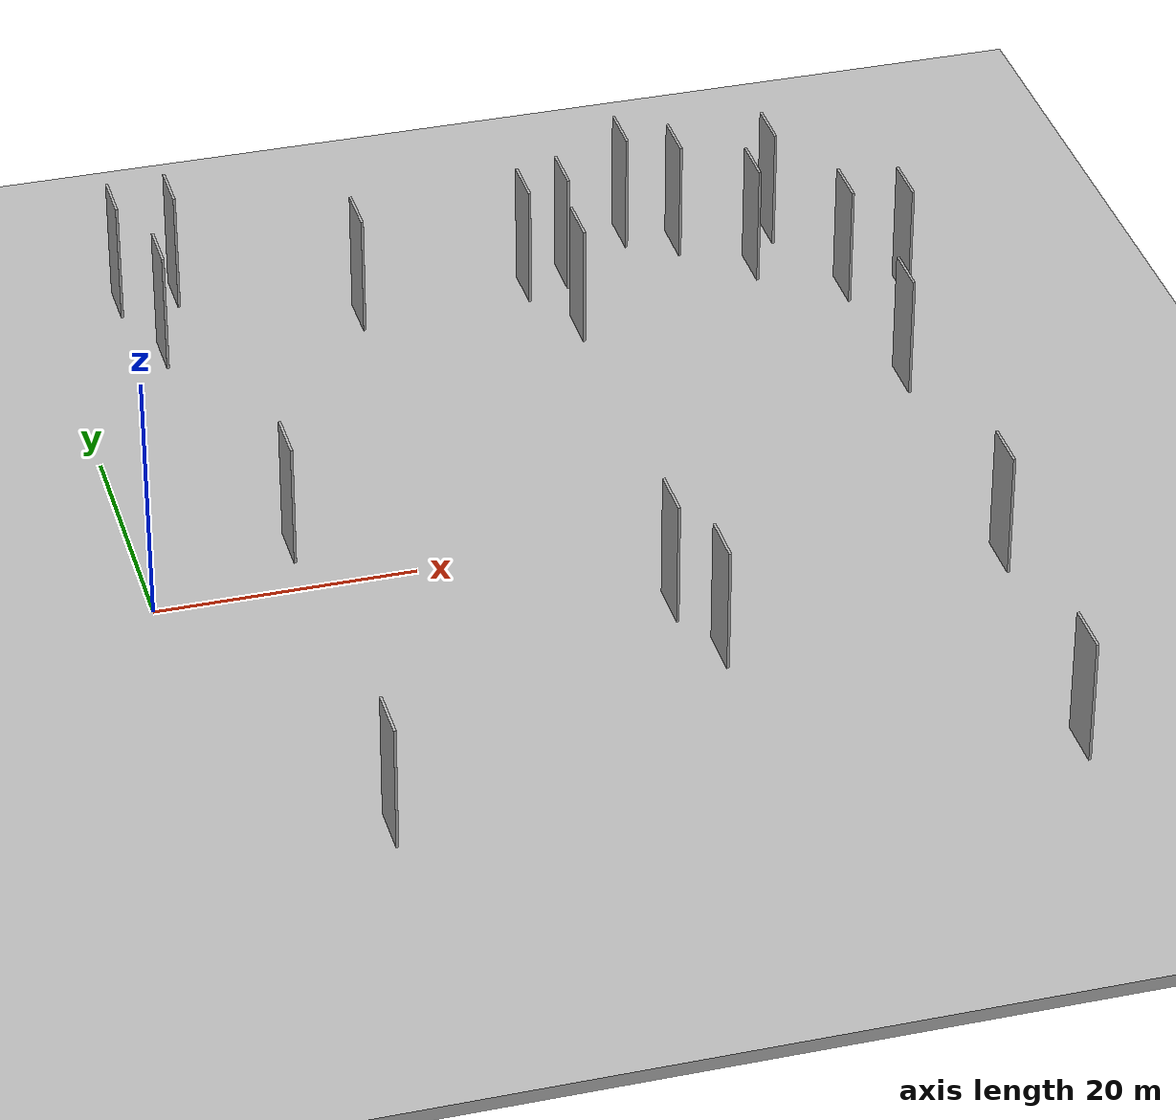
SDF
<?xml version="1.0" encoding="utf-8"?>

<sdf version="1.6">

   <world name="default">

      <gui fullscreen="0">

         <camera name="user_camera">

            <pose>-15 0 4.57585 0 0 0</pose>

            <view_controller>orbit</view_controller>

         </camera>

      </gui>

      <scene>

         <sky>

           <clouds>

             <speed>12</speed>

           </clouds>

         </sky>

         <ambient>0.4 0.4 0.4 1</ambient>

         <background>0.7 0.7 0.7 1</background>

         <shadows>1</shadows>

      </scene>

      <gravity>0 0 -9.8066</gravity>

      <magnetic_field>6e-06 2.3e-05 -4.2e-05</magnetic_field>

      <physics default="0" name="default_physics" type="ode">

         <ode>

            <solver>

               <type>quick</type>

               <iters>10</iters>

               <sor>1.0</sor>

               <use_dynamic_moi_rescaling>0</use_dynamic_moi_rescaling>

            </solver>

            <constraints>

               <cfm>0</cfm>

               <erp>0.2</erp>

               <contact_max_correcting_vel>100</contact_max_correcting_vel>

               <contact_surface_layer>0.001</contact_surface_layer>

            </constraints>

         </ode>

         <max_step_size>0.004</max_step_size>

         <real_time_factor>1</real_time_factor>

         <real_time_update_rate>250</real_time_update_rate>

      </physics>

      <light name="sun" type="directional">

         <cast_shadows>1</cast_shadows>

         <pose>0 0 10 0 0 0</pose>

         <diffuse>0.8 0.8 0.8 1</diffuse>

         <specular>0.2 0.2 0.2 1</specular>

         <attenuation>

            <range>1000</range>

            <constant>0.9</constant>

            <linear>0.01</linear>

            <quadratic>0.001</quadratic>

         </attenuation>

         <direction>-0.5 0.1 -0.9</direction>

      </light>

      <include>

         <name>ground_plane_1</name>

         <uri>model://HANNAS_ground_plane</uri>

         <pose>0 0 0  0 0 0</pose>

      </include>

      <include>

         <name>ground_plane_2</name>

         <uri>model://HANNAS_ground_plane</uri>

         <pose>100 0 0  0 0 0</pose>

      </include>

      <model name="HANNAS_wall_1">

         <static>1</static>

         <pose frame="">59.1306 -36.3086 2.5 0.000000 0.000000 1.570796</pose>

         <link name="link">

            <pose frame="">0 0 5.00 0 0 0</pose>

            <collision name="collision">

               <geometry>

                  <box>

                     <size>4.00 0.2 10.00</size>

                  </box>

               </geometry>

               <max_contacts>10</max_contacts>

               <surface>

                  <contact>

                     <ode/>

                  </contact>

                  <bounce/>

                  <friction>

                     <torsional>

                        <ode/>

                     </torsional>

                     <ode/>

                  </friction>

               </surface>

            </collision>

            <visual name="visual">

               <cast_shadows>0</cast_shadows>

               <geometry>

                  <box>

                     <size>4.00 0.2 10.00</size>

                  </box>

               </geometry>

               <material>

                  <script>

                     <uri>model://HANNAS_wall/materials/scripts</uri>

                     <uri>model://HANNAS_wall/materials/textures</uri>

                     <name>vrc/HANNAS_wall</name>

                  </script>

               </material>

            </visual>

            <self_collide>0</self_collide>

            <enable_wind>0</enable_wind>

            <kinematic>0</kinematic>

         </link>

      </model>

      <model name="HANNAS_wall_2">

         <static>1</static>

         <pose frame="">61.1889 -13.1505 2.5 0.000000 0.000000 1.570796</pose>

         <link name="link">

            <pose frame="">0 0 5.00 0 0 0</pose>

            <collision name="collision">

               <geometry>

                  <box>

                     <size>4.00 0.2 10.00</size>

                  </box>

               </geometry>

               <max_contacts>10</max_contacts>

               <surface>

                  <contact>

                     <ode/>

                  </contact>

                  <bounce/>

                  <friction>

                     <torsional>

                        <ode/>

                     </torsional>

                     <ode/>

                  </friction>

               </surface>

            </collision>

            <visual name="visual">

               <cast_shadows>0</cast_shadows>

               <geometry>

                  <box>

                     <size>4.00 0.2 10.00</size>

                  </box>

               </geometry>

               <material>

                  <script>

                     <uri>model://HANNAS_wall/materials/scripts</uri>

                     <uri>model://HANNAS_wall/materials/textures</uri>

                     <name>vrc/HANNAS_wall</name>

                  </script>

               </material>

            </visual>

            <self_collide>0</self_collide>

            <enable_wind>0</enable_wind>

            <kinematic>0</kinematic>

         </link>

      </model>

      <model name="HANNAS_wall_3">

         <static>1</static>

         <pose frame="">23.1870 31.6271 2.5 0.000000 0.000000 1.570796</pose>

         <link name="link">

            <pose frame="">0 0 5.00 0 0 0</pose>

            <collision name="collision">

               <geometry>

                  <box>

                     <size>4.00 0.2 10.00</size>

                  </box>

               </geometry>

               <max_contacts>10</max_contacts>

               <surface>

                  <contact>

                     <ode/>

                  </contact>

                  <bounce/>

                  <friction>

                     <torsional>

                        <ode/>

                     </torsional>

                     <ode/>

                  </friction>

               </surface>

            </collision>

            <visual name="visual">

               <cast_shadows>0</cast_shadows>

               <geometry>

                  <box>

                     <size>4.00 0.2 10.00</size>

                  </box>

               </geometry>

               <material>

                  <script>

                     <uri>model://HANNAS_wall/materials/scripts</uri>

                     <uri>model://HANNAS_wall/materials/textures</uri>

                     <name>vrc/HANNAS_wall</name>

                  </script>

               </material>

            </visual>

            <self_collide>0</self_collide>

            <enable_wind>0</enable_wind>

            <kinematic>0</kinematic>

         </link>

      </model>

      <model name="HANNAS_wall_4">

         <static>1</static>

         <pose frame="">37.7998 -19.1569 2.5 0.000000 0.000000 1.570796</pose>

         <link name="link">

            <pose frame="">0 0 5.00 0 0 0</pose>

            <collision name="collision">

               <geometry>

                  <box>

                     <size>4.00 0.2 10.00</size>

                  </box>

               </geometry>

               <max_contacts>10</max_contacts>

               <surface>

                  <contact>

                     <ode/>

                  </contact>

                  <bounce/>

                  <friction>

                     <torsional>

                        <ode/>

                     </torsional>

                     <ode/>

                  </friction>

               </surface>

            </collision>

            <visual name="visual">

               <cast_shadows>0</cast_shadows>

               <geometry>

                  <box>

                     <size>4.00 0.2 10.00</size>

                  </box>

               </geometry>

               <material>

                  <script>

                     <uri>model://HANNAS_wall/materials/scripts</uri>

                     <uri>model://HANNAS_wall/materials/textures</uri>

                     <name>vrc/HANNAS_wall</name>

                  </script>

               </material>

            </visual>

            <self_collide>0</self_collide>

            <enable_wind>0</enable_wind>

            <kinematic>0</kinematic>

         </link>

      </model>

      <model name="HANNAS_wall_5">

         <static>1</static>

         <pose frame="">66.0403 24.6191 2.5 0.000000 0.000000 1.570796</pose>

         <link name="link">

            <pose frame="">0 0 5.00 0 0 0</pose>

            <collision name="collision">

               <geometry>

                  <box>

                     <size>4.00 0.2 10.00</size>

                  </box>

               </geometry>

               <max_contacts>10</max_contacts>

               <surface>

                  <contact>

                     <ode/>

                  </contact>

                  <bounce/>

                  <friction>

                     <torsional>

                        <ode/>

                     </torsional>

                     <ode/>

                  </friction>

               </surface>

            </collision>

            <visual name="visual">

               <cast_shadows>0</cast_shadows>

               <geometry>

                  <box>

                     <size>4.00 0.2 10.00</size>

                  </box>

               </geometry>

               <material>

                  <script>

                     <uri>model://HANNAS_wall/materials/scripts</uri>

                     <uri>model://HANNAS_wall/materials/textures</uri>

                     <name>vrc/HANNAS_wall</name>

                  </script>

               </material>

            </visual>

            <self_collide>0</self_collide>

            <enable_wind>0</enable_wind>

            <kinematic>0</kinematic>

         </link>

      </model>

      <model name="HANNAS_wall_6">

         <static>1</static>

         <pose frame="">9.7675 38.8723 2.5 0.000000 0.000000 1.570796</pose>

         <link name="link">

            <pose frame="">0 0 5.00 0 0 0</pose>

            <collision name="collision">

               <geometry>

                  <box>

                     <size>4.00 0.2 10.00</size>

                  </box>

               </geometry>

               <max_contacts>10</max_contacts>

               <surface>

                  <contact>

                     <ode/>

                  </contact>

                  <bounce/>

                  <friction>

                     <torsional>

                        <ode/>

                     </torsional>

                     <ode/>

                  </friction>

               </surface>

            </collision>

            <visual name="visual">

               <cast_shadows>0</cast_shadows>

               <geometry>

                  <box>

                     <size>4.00 0.2 10.00</size>

                  </box>

               </geometry>

               <material>

                  <script>

                     <uri>model://HANNAS_wall/materials/scripts</uri>

                     <uri>model://HANNAS_wall/materials/textures</uri>

                     <name>vrc/HANNAS_wall</name>

                  </script>

               </material>

            </visual>

            <self_collide>0</self_collide>

            <enable_wind>0</enable_wind>

            <kinematic>0</kinematic>

         </link>

      </model>

      <model name="HANNAS_wall_7">

         <static>1</static>

         <pose frame="">10.7624 1.9095 2.5 0.000000 0.000000 1.570796</pose>

         <link name="link">

            <pose frame="">0 0 5.00 0 0 0</pose>

            <collision name="collision">

               <geometry>

                  <box>

                     <size>4.00 0.2 10.00</size>

                  </box>

               </geometry>

               <max_contacts>10</max_contacts>

               <surface>

                  <contact>

                     <ode/>

                  </contact>

                  <bounce/>

                  <friction>

                     <torsional>

                        <ode/>

                     </torsional>

                     <ode/>

                  </friction>

               </surface>

            </collision>

            <visual name="visual">

               <cast_shadows>0</cast_shadows>

               <geometry>

                  <box>

                     <size>4.00 0.2 10.00</size>

                  </box>

               </geometry>

               <material>

                  <script>

                     <uri>model://HANNAS_wall/materials/scripts</uri>

                     <uri>model://HANNAS_wall/materials/textures</uri>

                     <name>vrc/HANNAS_wall</name>

                  </script>

               </material>

            </visual>

            <self_collide>0</self_collide>

            <enable_wind>0</enable_wind>

            <kinematic>0</kinematic>

         </link>

      </model>

      <model name="HANNAS_wall_8">

         <static>1</static>

         <pose frame="">9.9175 -33.1087 2.5 0.000000 0.000000 1.570796</pose>

         <link name="link">

            <pose frame="">0 0 5.00 0 0 0</pose>

            <collision name="collision">

               <geometry>

                  <box>

                     <size>4.00 0.2 10.00</size>

                  </box>

               </geometry>

               <max_contacts>10</max_contacts>

               <surface>

                  <contact>

                     <ode/>

                  </contact>

                  <bounce/>

                  <friction>

                     <torsional>

                        <ode/>

                     </torsional>

                     <ode/>

                  </friction>

               </surface>

            </collision>

            <visual name="visual">

               <cast_shadows>0</cast_shadows>

               <geometry>

                  <box>

                     <size>4.00 0.2 10.00</size>

                  </box>

               </geometry>

               <material>

                  <script>

                     <uri>model://HANNAS_wall/materials/scripts</uri>

                     <uri>model://HANNAS_wall/materials/textures</uri>

                     <name>vrc/HANNAS_wall</name>

                  </script>

               </material>

            </visual>

            <self_collide>0</self_collide>

            <enable_wind>0</enable_wind>

            <kinematic>0</kinematic>

         </link>

      </model>

      <model name="HANNAS_wall_9">

         <static>1</static>

         <pose frame="">40.3556 33.4647 2.5 0.000000 0.000000 1.570796</pose>

         <link name="link">

            <pose frame="">0 0 5.00 0 0 0</pose>

            <collision name="collision">

               <geometry>

                  <box>

                     <size>4.00 0.2 10.00</size>

                  </box>

               </geometry>

               <max_contacts>10</max_contacts>

               <surface>

                  <contact>

                     <ode/>

                  </contact>

                  <bounce/>

                  <friction>

                     <torsional>

                        <ode/>

                     </torsional>

                     <ode/>

                  </friction>

               </surface>

            </collision>

            <visual name="visual">

               <cast_shadows>0</cast_shadows>

               <geometry>

                  <box>

                     <size>4.00 0.2 10.00</size>

                  </box>

               </geometry>

               <material>

                  <script>

                     <uri>model://HANNAS_wall/materials/scripts</uri>

                     <uri>model://HANNAS_wall/materials/textures</uri>

                     <name>vrc/HANNAS_wall</name>

                  </script>

               </material>

            </visual>

            <self_collide>0</self_collide>

            <enable_wind>0</enable_wind>

            <kinematic>0</kinematic>

         </link>

      </model>

      <model name="HANNAS_wall_10">

         <static>1</static>

         <pose frame="">7.0994 30.3611 2.5 0.000000 0.000000 1.570796</pose>

         <link name="link">

            <pose frame="">0 0 5.00 0 0 0</pose>

            <collision name="collision">

               <geometry>

                  <box>

                     <size>4.00 0.2 10.00</size>

                  </box>

               </geometry>

               <max_contacts>10</max_contacts>

               <surface>

                  <contact>

                     <ode/>

                  </contact>

                  <bounce/>

                  <friction>

                     <torsional>

                        <ode/>

                     </torsional>

                     <ode/>

                  </friction>

               </surface>

            </collision>

            <visual name="visual">

               <cast_shadows>0</cast_shadows>

               <geometry>

                  <box>

                     <size>4.00 0.2 10.00</size>

                  </box>

               </geometry>

               <material>

                  <script>

                     <uri>model://HANNAS_wall/materials/scripts</uri>

                     <uri>model://HANNAS_wall/materials/textures</uri>

                     <name>vrc/HANNAS_wall</name>

                  </script>

               </material>

            </visual>

            <self_collide>0</self_collide>

            <enable_wind>0</enable_wind>

            <kinematic>0</kinematic>

         </link>

      </model>

      <model name="HANNAS_wall_11">

         <static>1</static>

         <pose frame="">35.9302 -12.6870 2.5 0.000000 0.000000 1.570796</pose>

         <link name="link">

            <pose frame="">0 0 5.00 0 0 0</pose>

            <collision name="collision">

               <geometry>

                  <box>

                     <size>4.00 0.2 10.00</size>

                  </box>

               </geometry>

               <max_contacts>10</max_contacts>

               <surface>

                  <contact>

                     <ode/>

                  </contact>

                  <bounce/>

                  <friction>

                     <torsional>

                        <ode/>

                     </torsional>

                     <ode/>

                  </friction>

               </surface>

            </collision>

            <visual name="visual">

               <cast_shadows>0</cast_shadows>

               <geometry>

                  <box>

                     <size>4.00 0.2 10.00</size>

                  </box>

               </geometry>

               <material>

                  <script>

                     <uri>model://HANNAS_wall/materials/scripts</uri>

                     <uri>model://HANNAS_wall/materials/textures</uri>

                     <name>vrc/HANNAS_wall</name>

                  </script>

               </material>

            </visual>

            <self_collide>0</self_collide>

            <enable_wind>0</enable_wind>

            <kinematic>0</kinematic>

         </link>

      </model>

      <model name="HANNAS_wall_12">

         <static>1</static>

         <pose frame="">58.1545 35.7373 2.5 0.000000 0.000000 1.570796</pose>

         <link name="link">

            <pose frame="">0 0 5.00 0 0 0</pose>

            <collision name="collision">

               <geometry>

                  <box>

                     <size>4.00 0.2 10.00</size>

                  </box>

               </geometry>

               <max_contacts>10</max_contacts>

               <surface>

                  <contact>

                     <ode/>

                  </contact>

                  <bounce/>

                  <friction>

                     <torsional>

                        <ode/>

                     </torsional>

                     <ode/>

                  </friction>

               </surface>

            </collision>

            <visual name="visual">

               <cast_shadows>0</cast_shadows>

               <geometry>

                  <box>

                     <size>4.00 0.2 10.00</size>

                  </box>

               </geometry>

               <material>

                  <script>

                     <uri>model://HANNAS_wall/materials/scripts</uri>

                     <uri>model://HANNAS_wall/materials/textures</uri>

                     <name>vrc/HANNAS_wall</name>

                  </script>

               </material>

            </visual>

            <self_collide>0</self_collide>

            <enable_wind>0</enable_wind>

            <kinematic>0</kinematic>

         </link>

      </model>

      <model name="HANNAS_wall_13">

         <static>1</static>

         <pose frame="">46.5181 38.2249 2.5 0.000000 0.000000 1.570796</pose>

         <link name="link">

            <pose frame="">0 0 5.00 0 0 0</pose>

            <collision name="collision">

               <geometry>

                  <box>

                     <size>4.00 0.2 10.00</size>

                  </box>

               </geometry>

               <max_contacts>10</max_contacts>

               <surface>

                  <contact>

                     <ode/>

                  </contact>

                  <bounce/>

                  <friction>

                     <torsional>

                        <ode/>

                     </torsional>

                     <ode/>

                  </friction>

               </surface>

            </collision>

            <visual name="visual">

               <cast_shadows>0</cast_shadows>

               <geometry>

                  <box>

                     <size>4.00 0.2 10.00</size>

                  </box>

               </geometry>

               <material>

                  <script>

                     <uri>model://HANNAS_wall/materials/scripts</uri>

                     <uri>model://HANNAS_wall/materials/textures</uri>

                     <name>vrc/HANNAS_wall</name>

                  </script>

               </material>

            </visual>

            <self_collide>0</self_collide>

            <enable_wind>0</enable_wind>

            <kinematic>0</kinematic>

         </link>

      </model>

      <model name="HANNAS_wall_14">

         <static>1</static>

         <pose frame="">36.8862 32.3647 2.5 0.000000 0.000000 1.570796</pose>

         <link name="link">

            <pose frame="">0 0 5.00 0 0 0</pose>

            <collision name="collision">

               <geometry>

                  <box>

                     <size>4.00 0.2 10.00</size>

                  </box>

               </geometry>

               <max_contacts>10</max_contacts>

               <surface>

                  <contact>

                     <ode/>

                  </contact>

                  <bounce/>

                  <friction>

                     <torsional>

                        <ode/>

                     </torsional>

                     <ode/>

                  </friction>

               </surface>

            </collision>

            <visual name="visual">

               <cast_shadows>0</cast_shadows>

               <geometry>

                  <box>

                     <size>4.00 0.2 10.00</size>

                  </box>

               </geometry>

               <material>

                  <script>

                     <uri>model://HANNAS_wall/materials/scripts</uri>

                     <uri>model://HANNAS_wall/materials/textures</uri>

                     <name>vrc/HANNAS_wall</name>

                  </script>

               </material>

            </visual>

            <self_collide>0</self_collide>

            <enable_wind>0</enable_wind>

            <kinematic>0</kinematic>

         </link>

      </model>

      <model name="HANNAS_wall_15">

         <static>1</static>

         <pose frame="">39.4864 25.5431 2.5 0.000000 0.000000 1.570796</pose>

         <link name="link">

            <pose frame="">0 0 5.00 0 0 0</pose>

            <collision name="collision">

               <geometry>

                  <box>

                     <size>4.00 0.2 10.00</size>

                  </box>

               </geometry>

               <max_contacts>10</max_contacts>

               <surface>

                  <contact>

                     <ode/>

                  </contact>

                  <bounce/>

                  <friction>

                     <torsional>

                        <ode/>

                     </torsional>

                     <ode/>

                  </friction>

               </surface>

            </collision>

            <visual name="visual">

               <cast_shadows>0</cast_shadows>

               <geometry>

                  <box>

                     <size>4.00 0.2 10.00</size>

                  </box>

               </geometry>

               <material>

                  <script>

                     <uri>model://HANNAS_wall/materials/scripts</uri>

                     <uri>model://HANNAS_wall/materials/textures</uri>

                     <name>vrc/HANNAS_wall</name>

                  </script>

               </material>

            </visual>

            <self_collide>0</self_collide>

            <enable_wind>0</enable_wind>

            <kinematic>0</kinematic>

         </link>

      </model>

      <model name="HANNAS_wall_16">

         <static>1</static>

         <pose frame="">61.4227 25.6950 2.5 0.000000 0.000000 1.570796</pose>

         <link name="link">

            <pose frame="">0 0 5.00 0 0 0</pose>

            <collision name="collision">

               <geometry>

                  <box>

                     <size>4.00 0.2 10.00</size>

                  </box>

               </geometry>

               <max_contacts>10</max_contacts>

               <surface>

                  <contact>

                     <ode/>

                  </contact>

                  <bounce/>

                  <friction>

                     <torsional>

                        <ode/>

                     </torsional>

                     <ode/>

                  </friction>

               </surface>

            </collision>

            <visual name="visual">

               <cast_shadows>0</cast_shadows>

               <geometry>

                  <box>

                     <size>4.00 0.2 10.00</size>

                  </box>

               </geometry>

               <material>

                  <script>

                     <uri>model://HANNAS_wall/materials/scripts</uri>

                     <uri>model://HANNAS_wall/materials/textures</uri>

                     <name>vrc/HANNAS_wall</name>

                  </script>

               </material>

            </visual>

            <self_collide>0</self_collide>

            <enable_wind>0</enable_wind>

            <kinematic>0</kinematic>

         </link>

      </model>

      <model name="HANNAS_wall_17">

         <static>1</static>

         <pose frame="">55.3042 30.6574 2.5 0.000000 0.000000 1.570796</pose>

         <link name="link">

            <pose frame="">0 0 5.00 0 0 0</pose>

            <collision name="collision">

               <geometry>

                  <box>

                     <size>4.00 0.2 10.00</size>

                  </box>

               </geometry>

               <max_contacts>10</max_contacts>

               <surface>

                  <contact>

                     <ode/>

                  </contact>

                  <bounce/>

                  <friction>

                     <torsional>

                        <ode/>

                     </torsional>

                     <ode/>

                  </friction>

               </surface>

            </collision>

            <visual name="visual">

               <cast_shadows>0</cast_shadows>

               <geometry>

                  <box>

                     <size>4.00 0.2 10.00</size>

                  </box>

               </geometry>

               <material>

                  <script>

                     <uri>model://HANNAS_wall/materials/scripts</uri>

                     <uri>model://HANNAS_wall/materials/textures</uri>

                     <name>vrc/HANNAS_wall</name>

                  </script>

               </material>

            </visual>

            <self_collide>0</self_collide>

            <enable_wind>0</enable_wind>

            <kinematic>0</kinematic>

         </link>

      </model>

      <model name="HANNAS_wall_18">

         <static>1</static>

         <pose frame="">5.1152 38.5704 2.5 0.000000 0.000000 1.570796</pose>

         <link name="link">

            <pose frame="">0 0 5.00 0 0 0</pose>

            <collision name="collision">

               <geometry>

                  <box>

                     <size>4.00 0.2 10.00</size>

                  </box>

               </geometry>

               <max_contacts>10</max_contacts>

               <surface>

                  <contact>

                     <ode/>

                  </contact>

                  <bounce/>

                  <friction>

                     <torsional>

                        <ode/>

                     </torsional>

                     <ode/>

                  </friction>

               </surface>

            </collision>

            <visual name="visual">

               <cast_shadows>0</cast_shadows>

               <geometry>

                  <box>

                     <size>4.00 0.2 10.00</size>

                  </box>

               </geometry>

               <material>

                  <script>

                     <uri>model://HANNAS_wall/materials/scripts</uri>

                     <uri>model://HANNAS_wall/materials/textures</uri>

                     <name>vrc/HANNAS_wall</name>

                  </script>

               </material>

            </visual>

            <self_collide>0</self_collide>

            <enable_wind>0</enable_wind>

            <kinematic>0</kinematic>

         </link>

      </model>

      <model name="HANNAS_wall_19">

         <static>1</static>

         <pose frame="">61.8454 11.8221 2.5 0.000000 0.000000 1.570796</pose>

         <link name="link">

            <pose frame="">0 0 5.00 0 0 0</pose>

            <collision name="collision">

               <geometry>

                  <box>

                     <size>4.00 0.2 10.00</size>

                  </box>

               </geometry>

               <max_contacts>10</max_contacts>

               <surface>

                  <contact>

                     <ode/>

                  </contact>

                  <bounce/>

                  <friction>

                     <torsional>

                        <ode/>

                     </torsional>

                     <ode/>

                  </friction>

               </surface>

            </collision>

            <visual name="visual">

               <cast_shadows>0</cast_shadows>

               <geometry>

                  <box>

                     <size>4.00 0.2 10.00</size>

                  </box>

               </geometry>

               <material>

                  <script>

                     <uri>model://HANNAS_wall/materials/scripts</uri>

                     <uri>model://HANNAS_wall/materials/textures</uri>

                     <name>vrc/HANNAS_wall</name>

                  </script>

               </material>

            </visual>

            <self_collide>0</self_collide>

            <enable_wind>0</enable_wind>

            <kinematic>0</kinematic>

         </link>

      </model>

      <model name="HANNAS_wall_20">

         <static>1</static>

         <pose frame="">50.3360 35.8996 2.5 0.000000 0.000000 1.570796</pose>

         <link name="link">

            <pose frame="">0 0 5.00 0 0 0</pose>

            <collision name="collision">

               <geometry>

                  <box>

                     <size>4.00 0.2 10.00</size>

                  </box>

               </geometry>

               <max_contacts>10</max_contacts>

               <surface>

                  <contact>

                     <ode/>

                  </contact>

                  <bounce/>

                  <friction>

                     <torsional>

                        <ode/>

                     </torsional>

                     <ode/>

                  </friction>

               </surface>

            </collision>

            <visual name="visual">

               <cast_shadows>0</cast_shadows>

               <geometry>

                  <box>

                     <size>4.00 0.2 10.00</size>

                  </box>

               </geometry>

               <material>

                  <script>

                     <uri>model://HANNAS_wall/materials/scripts</uri>

                     <uri>model://HANNAS_wall/materials/textures</uri>

                     <name>vrc/HANNAS_wall</name>

                  </script>

               </material>

            </visual>

            <self_collide>0</self_collide>

            <enable_wind>0</enable_wind>

            <kinematic>0</kinematic>

         </link>

      </model>

   </world>

</sdf>

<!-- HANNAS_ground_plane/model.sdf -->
<sdf version="1.4">
<model name="HANNAS_ground_plane">
  <static>true</static>
    <link name="link">
      <collision name="collision">
        <geometry>
          <plane>
            <normal>0 0 1</normal>
            <size>1000 1000</size>
          </plane>
        </geometry>
        <surface>
          <friction>
            <ode>
              <mu>100</mu>
              <mu2>50</mu2>
            </ode>
          </friction>
        </surface>
      </collision>
      <visual name="visual">
        <cast_shadows>false</cast_shadows>
        <geometry>
          <plane>
            <normal>0 0 1</normal>
            <size>1000 1000</size>
          </plane>
        </geometry>
        <material>
          <script>
            <uri>model://HANNAS_ground_plane/materials/scripts/HANNAS_ground_plane.material</uri>
	    <uri>model://HANNAS_ground_plane/materials/textures</uri>
            <name>HANNASGroundPlane/Image</name>
          </script>
        </material>
      </visual>
    </link>
  </model>
</sdf>
